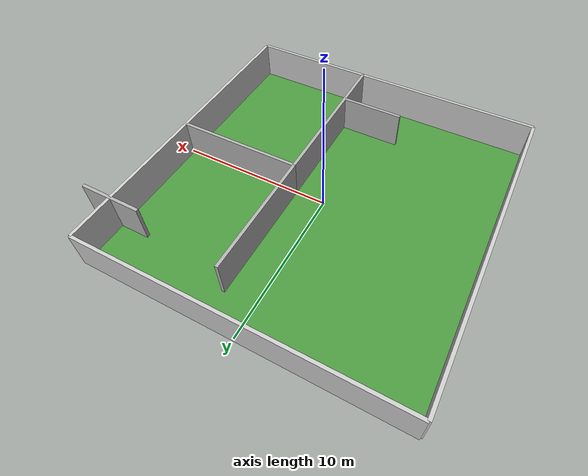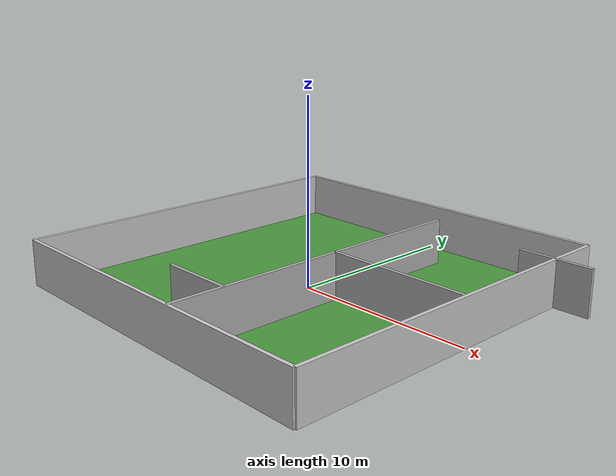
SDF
<?xml version="1.0" ?>
<sdf version="1.6">
  <world name="maze_world_a">
    <model name="maze_a">
      <static>true</static>

      <!-- Floor -->
      <link name="floor">
        <collision name="floor_collision">
          <geometry>
            <plane>
              <normal>0 0 1</normal>
              <size>20 20</size>
            </plane>
          </geometry>
        </collision>
        <visual name="floor_visual">
          <geometry>
            <plane>
              <normal>0 0 1</normal>
              <size>20 20</size>
            </plane>
          </geometry>
          <material>
            <script>
              <uri>file://media/materials/scripts/gazebo.material</uri>
              <name>Gazebo/Grass</name>
            </script>
          </material>
        </visual>
      </link>

      <!-- Walls -->
      <link name="walls">
        <!-- Outer Walls -->
        <collision name="north_wall_collision">
          <geometry>
            <box>
              <size>20 0.2 2.5</size>
            </box>
          </geometry>
          <pose>0 10 1.25 0 0 0</pose>
        </collision>
        <visual name="north_wall_visual">
          <geometry>
            <box>
              <size>20 0.2 2.5</size>
            </box>
          </geometry>
          <pose>0 10 1.25 0 0 0</pose>
          <material>
            <ambient>0.8 0.8 0.8 1</ambient>
          </material>
        </visual>

        <collision name="south_wall_collision">
          <geometry>
            <box>
              <size>20 0.2 2.5</size>
            </box>
          </geometry>
          <pose>0 -10 1.25 0 0 0</pose>
        </collision>
        <visual name="south_wall_visual">
          <geometry>
            <box>
              <size>20 0.2 2.5</size>
            </box>
          </geometry>
          <pose>0 -10 1.25 0 0 0</pose>
          <material>
            <ambient>0.8 0.8 0.8 1</ambient>
          </material>
        </visual>

        <collision name="east_wall_collision">
          <geometry>
            <box>
              <size>0.2 20 2.5</size>
            </box>
          </geometry>
          <pose>10 0 1.25 0 0 0</pose>
        </collision>
        <visual name="east_wall_visual">
          <geometry>
            <box>
              <size>0.2 20 2.5</size>
            </box>
          </geometry>
          <pose>10 0 1.25 0 0 0</pose>
          <material>
            <ambient>0.8 0.8 0.8 1</ambient>
          </material>
        </visual>

        <collision name="west_wall_collision">
          <geometry>
            <box>
              <size>0.2 20 2.5</size>
            </box>
          </geometry>
          <pose>-10 0 1.25 0 0 0</pose>
        </collision>
        <visual name="west_wall_visual">
          <geometry>
            <box>
              <size>0.2 20 2.5</size>
            </box>
          </geometry>
          <pose>-10 0 1.25 0 0 0</pose>
          <material>
            <ambient>0.8 0.8 0.8 1</ambient>
          </material>
        </visual>

        <!-- Internal Walls -->
        <!-- Wall 1 -->
        <collision name="wall1_collision">
          <geometry>
            <box>
              <size>0.2 10 2.5</size>
            </box>
          </geometry>
          <pose>2 -5 1.25 0 0 0</pose>
        </collision>
        <visual name="wall1_visual">
          <geometry>
            <box>
              <size>0.2 10 2.5</size>
            </box>
          </geometry>
          <pose>2 -5 1.25 0 0 0</pose>
          <material>
            <ambient>0.7 0.7 0.7 1</ambient>
          </material>
        </visual>

        <!-- Wall 2 -->
        <collision name="wall2_collision">
          <geometry>
            <box>
              <size>8 0.2 2.5</size>
            </box>
          </geometry>
          <pose>6 0 1.25 0 0 0</pose>
        </collision>
        <visual name="wall2_visual">
          <geometry>
            <box>
              <size>8 0.2 2.5</size>
            </box>
          </geometry>
          <pose>6 0 1.25 0 0 0</pose>
          <material>
            <ambient>0.7 0.7 0.7 1</ambient>
          </material>
        </visual>

        <!-- Wall 3 -->
        <collision name="wall3_collision">
          <geometry>
            <box>
              <size>0.2 8 2.5</size>
            </box>
          </geometry>
          <pose>2 4 1.25 0 0 0</pose>
        </collision>
        <visual name="wall3_visual">
          <geometry>
            <box>
              <size>0.2 8 2.5</size>
            </box>
          </geometry>
          <pose>2 4 1.25 0 0 0</pose>
          <material>
            <ambient>0.7 0.7 0.7 1</ambient>
          </material>
        </visual>

        <!-- Closing Walls -->
        <!-- Entry Closing Wall -->
        <collision name="entry_closing_wall_collision">
          <geometry>
            <box>
              <size>4 0.2 2.5</size>
            </box>
          </geometry>
          <pose>0 -7 1.25 0 0 0</pose>
        </collision>
        <visual name="entry_closing_wall_visual">
          <geometry>
            <box>
              <size>4 0.2 2.5</size>
            </box>
          </geometry>
          <pose>0 -7 1.25 0 0 0</pose>
          <material>
            <ambient>0.7 0.7 0.7 1</ambient>
          </material>
        </visual>

        <!-- Exit Closing Wall -->
        <collision name="exit_closing_wall_collision">
          <geometry>
            <box>
              <size>4 0.2 2.5</size>
            </box>
          </geometry>
          <pose>10 7 1.25 0 0 0</pose>
        </collision>
        <visual name="exit_closing_wall_visual">
          <geometry>
            <box>
              <size>4 0.2 2.5</size>
            </box>
          </geometry>
          <pose>10 7 1.25 0 0 0</pose>
          <material>
            <ambient>0.7 0.7 0.7 1</ambient>
          </material>
        </visual>

      </link>
    </model>
  </world>
</sdf>
